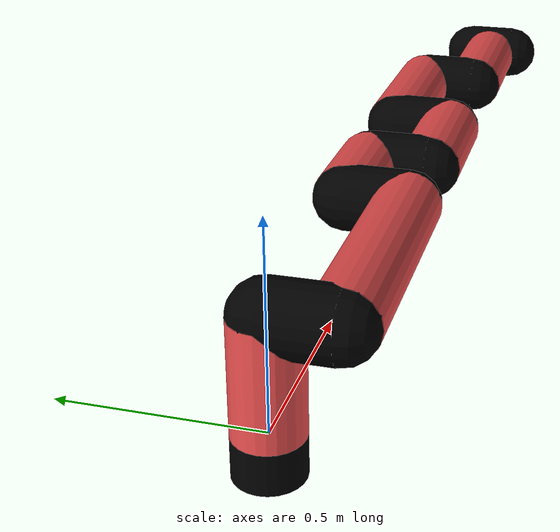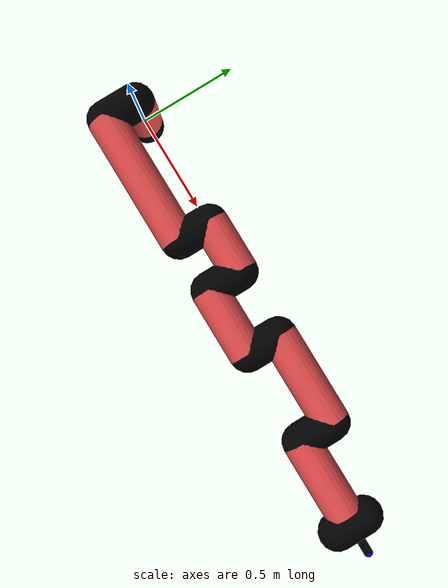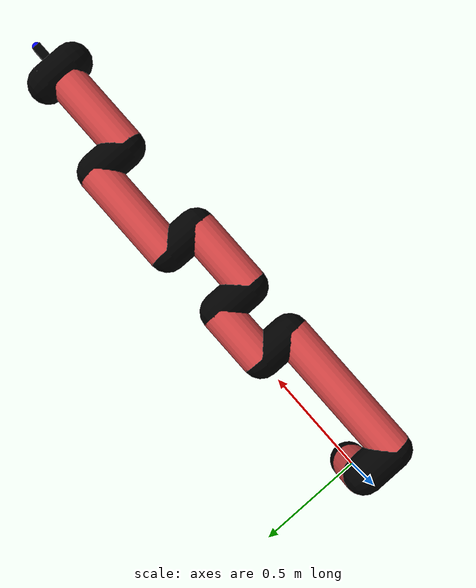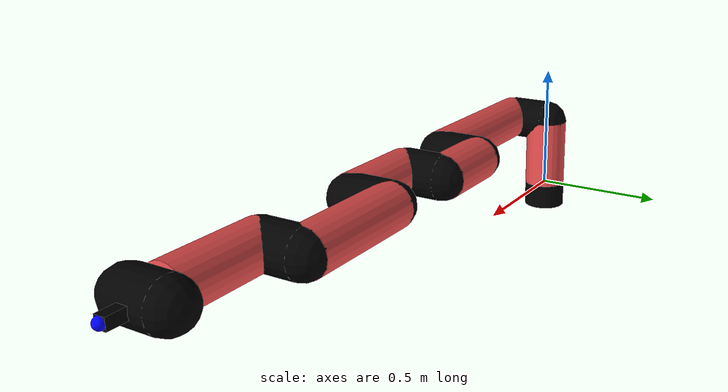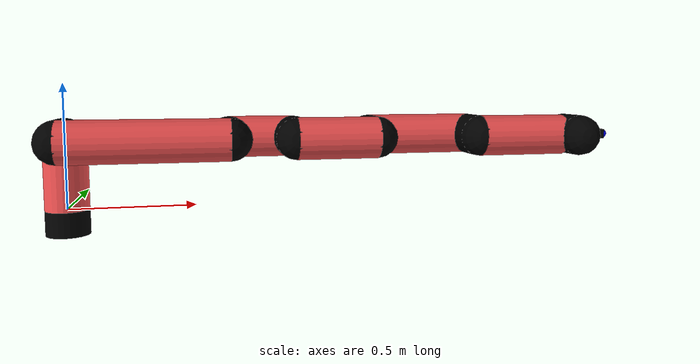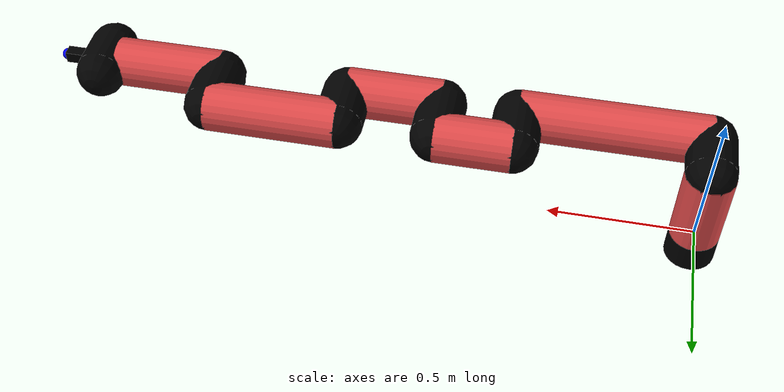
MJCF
<mujoco model="manipulator">
		<compiler angle="degree" coordinate="local" inertiafromgeom="auto" meshdir="meshes/"/>
		<option gravity="0 0 0" integrator="RK4" iterations="30" timestep="0.01"/>

		<default>
		<joint armature="1" limited="true" stiffness="10" damping="15" frictionloss="5.0"/>
		<geom conaffinity="1" condim="3" contype="1" friction=".5 .1 .1" margin="0.002"/>
		<motor ctrllimited="true"/>
		<position ctrllimited="true"/>
		</default>

		<asset>
		<texture builtin="gradient" height="100" rgb1="1.0 1.0 1.0" rgb2="1.0 1.0 1.0" type="skybox" width="100"/>
		<texture builtin="flat" height="32" name="arm_tex" rgb1="0.9 0.3 0.3" type="2d" width="32"/>
		<texture builtin="flat" height="32" name="gripper_tex" rgb1="0.0 0.0 0.0" type="cube" width="32"/>

		<material name="arm_mat" shininess="0.1" specular="0.1" texture="arm_tex"/>
		<material name="gripper_mat" shininess="1" specular="1" texture="gripper_tex"/>
		</asset>

		<worldbody>
		<light cutoff="45" diffuse=".8 .8 .8" dir="0 0.16 -1" directional="false" name="light" pos="0 -2.0 8.0" specular="0.3 0.3 0.3"/>

		<body name="base_link" pos="0 0 -0.1">
		<geom fromto="0 0 0 0 0 0.1" material="arm_mat" name="base_link" rgba="0.0 0.0 0.0 1" size="0.085" type="cylinder"/>
		</body>

		<body name="l1" pos="0 0 0">
<geom fromto="0 0 0 0 0 0.28" material="arm_mat" name="l1" rgba="0.9 0.3 0.3 1" size="0.085" type="cylinder"/>
<geom fromto="0 0 0.28 0 -0.16 0.28" material="arm_mat" name="l1_ex" rgba="0.0 0.0 0.0 1" size="0.085" type="capsule"/>
<joint axis="0 0 1" name="j1" pos="0 0 0" range="-90 90" damping="28.49" frictionloss="8.05"/>

<body name="l2" pos="0 -0.16 0.28">
<geom fromto="0 0 0 0.64 0 0" material="arm_mat" name="l2" rgba="0.9 0.3 0.3 1" size="0.085" type="cylinder"/>
<geom fromto="0.64 0 0 0.64 0.16 0" material="arm_mat" name="l2_ex" rgba="0.0 0.0 0.0 1" size="0.085" type="capsule"/>
<joint axis="0.0 1.0 0.0" name="j2" pos="0 0 0" range="-90 60" damping="35.5" frictionloss="9.92"/>

<body name="l3" pos="0.64 0.16 0">
<geom fromto="0 0 0 0.26 0 0" material="arm_mat" name="l3" rgba="0.9 0.3 0.3 1" size="0.085" type="cylinder"/>
<geom fromto="0.26 0 0 0.26 -0.16 0" material="arm_mat" name="l3_ex" rgba="0.0 0.0 0.0 1" size="0.085" type="capsule"/>
<joint axis="0.0 1.0 0.0" name="j3" pos="0 0 0" range="-30 60" damping="21.12" frictionloss="5.04"/>

<body name="l4" pos="0.26 -0.16 0">
<geom fromto="0 0 0 0.33 0 0" material="arm_mat" name="l4" rgba="0.9 0.3 0.3 1" size="0.085" type="cylinder"/>
<geom fromto="0.33 0 0 0.33 0.16 0" material="arm_mat" name="l4_ex" rgba="0.0 0.0 0.0 1" size="0.085" type="capsule"/>
<joint axis="0.0 1.0 0.0" name="j4" pos="0 0 0" range="-30 60" damping="41.45" frictionloss="13.29"/>

<body name="l5" pos="0.33 0.16 0">
<geom fromto="0 0 0 0.45 0 0" material="arm_mat" name="l5" rgba="0.9 0.3 0.3 1" size="0.085" type="cylinder"/>
<geom fromto="0.45 0 0 0.45 -0.16 0" material="arm_mat" name="l5_ex" rgba="0.0 0.0 0.0 1" size="0.085" type="capsule"/>
<joint axis="0.0 1.0 0.0" name="j5" pos="0 0 0" range="-30 60" damping="28.85" frictionloss="13.35"/>

<body name="l6" pos="0.45 -0.16 0">
<geom fromto="0 0 0 0.37 0 0" material="arm_mat" name="l6" rgba="0.9 0.3 0.3 1" size="0.085" type="cylinder"/>
<joint axis="0.0 1.0 0.0" name="j6" pos="0 0 0" range="-30 60" damping="44.63" frictionloss="8.05"/>

<body name="gripper" pos="0.37 0 0">
<geom fromto="0.05 -0.07 0 0.05 0.07 0" material="gripper_mat" name="gripper" rgba="0.0 0.0 0.0 1" size="0.085" type="capsule"/><joint axis="1 0 0" name="j7" pos="0 0 0" range="-90 90" damping="15" frictionloss="5.0"/><body name="finger" pos="0.1 0 0">
<geom fromto="0 0.0 0 0.1 0.0 0" material="gripper_mat" name="finger" rgba="0.0 0.0 0.0 1" size="0.020 0.06 0.06" type="box"/>
</body>
<site name="current" pos="0.2 0. 0.0" rgba="0. 0. 1.0 1" size="0.02" type="sphere"/>
</body>
</body>
</body>
</body>
</body>
</body>
</body>
</worldbody>
<actuator>
<motor ctrllimited="true" ctrlrange="-1.0 1.0" joint="j1" gear="71.95"/>
<motor ctrllimited="true" ctrlrange="-1.0 1.0" joint="j2" gear="91.81"/>
<motor ctrllimited="true" ctrlrange="-1.0 1.0" joint="j3" gear="62.21"/>
<motor ctrllimited="true" ctrlrange="-1.0 1.0" joint="j4" gear="80.88"/>
<motor ctrllimited="true" ctrlrange="-1.0 1.0" joint="j5" gear="72.72"/>
<motor ctrllimited="true" ctrlrange="-1.0 1.0" joint="j6" gear="53.63"/>
<motor ctrllimited="true" ctrlrange="-1.0 1.0" joint="j7" gear="80"/>
</actuator>
</mujoco>
